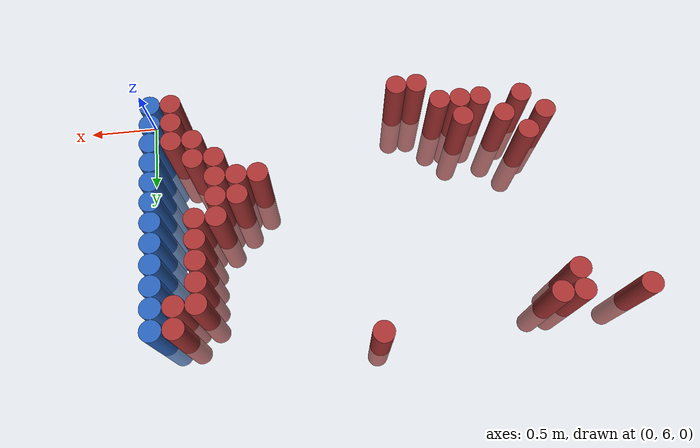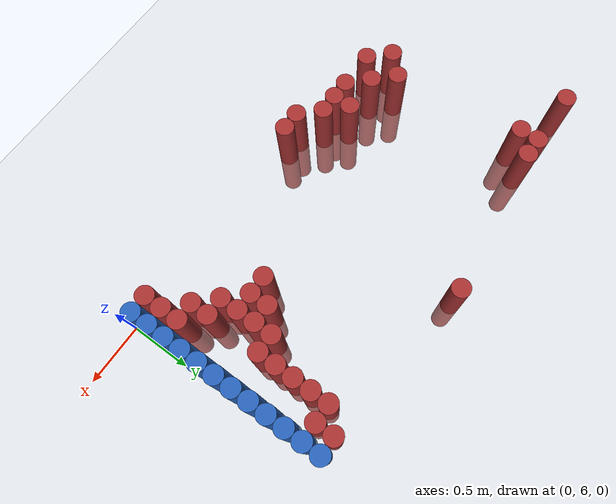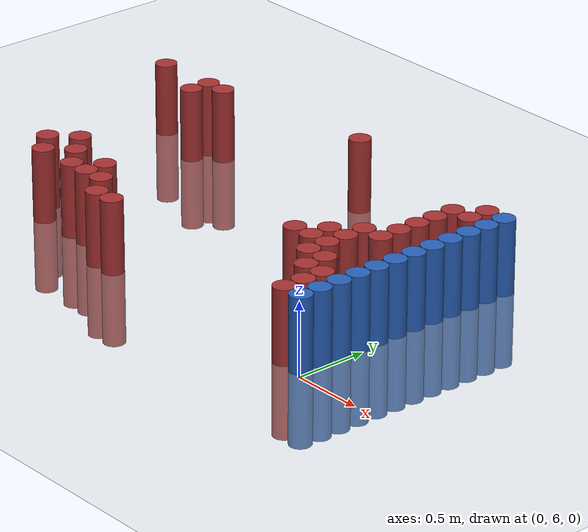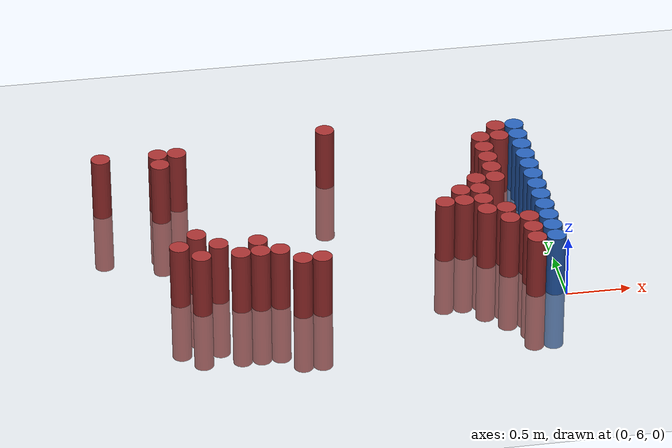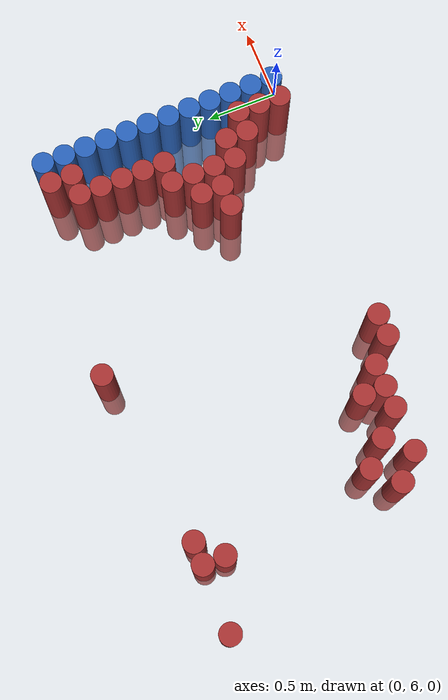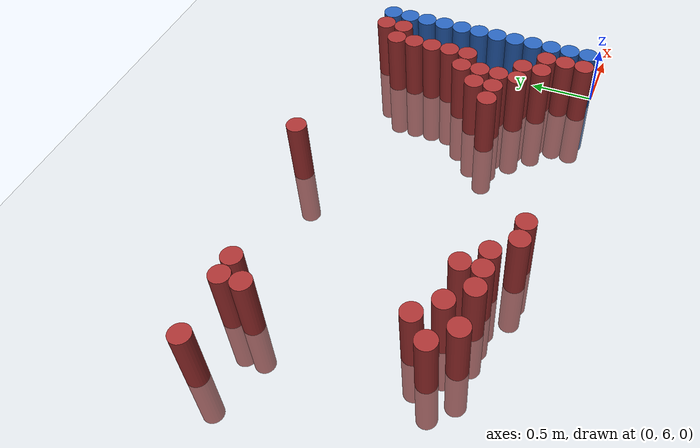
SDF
<sdf version="1.6">
 <world name="default">
  <model name="ground_plane">
   <static>1</static>
   <link name="link">
    <collision name="collision">
     <geometry><plane><normal>0 0 1</normal><size>100 100</size></plane></geometry>
     <surface><friction><ode><mu>100</mu><mu2>50</mu2></ode></friction></surface>
    </collision>
    <visual name="visual">
     <cast_shadows>0</cast_shadows>
     <geometry><plane><normal>0 0 1</normal><size>100 100</size></plane></geometry>
     <material>
      <script><uri>file://media/materials/scripts/gazebo.material</uri><name>Gazebo/Grey</name></script>
     </material>
    </visual>
   </link>
  </model>
  <model name="unit_cylinder_159">
   <static>1</static>
   <pose>-3.375000 7.725000 0.000000 0.000000 0.000000 0.000000</pose>
   <link name="link">
    <inertial>
     <mass>1</mass>
     <inertia><ixx>0.145833</ixx><ixy>0</ixy><ixz>0</ixz><iyy>0.145833</iyy><iyz>0</iyz><izz>0.125</izz></inertia>
    </inertial>
    <collision name="collision">
     <geometry><cylinder><radius>0.075000</radius><length>1</length></cylinder></geometry>
    </collision>
    <visual name="visual">
     <geometry><cylinder><radius>0.075000</radius><length>1</length></cylinder></geometry>
     <material>
      <ambient>0.648000 0.192000 0.192000 1</ambient>
      <diffuse>0.648000 0.192000 0.192000 1</diffuse>
     </material>
     <material>
      <script><name>Gazebo/Grey</name><uri>file://media/materials/scripts/gazebo.material</uri></script>
     </material>
    </visual>
   </link>
  </model>
  <model name="unit_cylinder_171">
   <static>1</static>
   <pose>-2.925000 6.375000 0.000000 0.000000 0.000000 0.000000</pose>
   <link name="link">
    <inertial>
     <mass>1</mass>
     <inertia><ixx>0.145833</ixx><ixy>0</ixy><ixz>0</ixz><iyy>0.145833</iyy><iyz>0</iyz><izz>0.125</izz></inertia>
    </inertial>
    <collision name="collision">
     <geometry><cylinder><radius>0.075000</radius><length>1</length></cylinder></geometry>
    </collision>
    <visual name="visual">
     <geometry><cylinder><radius>0.075000</radius><length>1</length></cylinder></geometry>
     <material>
      <ambient>0.648000 0.192000 0.192000 1</ambient>
      <diffuse>0.648000 0.192000 0.192000 1</diffuse>
     </material>
     <material>
      <script><name>Gazebo/Grey</name><uri>file://media/materials/scripts/gazebo.material</uri></script>
     </material>
    </visual>
   </link>
  </model>
  <model name="unit_cylinder_172">
   <static>1</static>
   <pose>-2.925000 7.575000 0.000000 0.000000 0.000000 0.000000</pose>
   <link name="link">
    <inertial>
     <mass>1</mass>
     <inertia><ixx>0.145833</ixx><ixy>0</ixy><ixz>0</ixz><iyy>0.145833</iyy><iyz>0</iyz><izz>0.125</izz></inertia>
    </inertial>
    <collision name="collision">
     <geometry><cylinder><radius>0.075000</radius><length>1</length></cylinder></geometry>
    </collision>
    <visual name="visual">
     <geometry><cylinder><radius>0.075000</radius><length>1</length></cylinder></geometry>
     <material>
      <ambient>0.648000 0.192000 0.192000 1</ambient>
      <diffuse>0.648000 0.192000 0.192000 1</diffuse>
     </material>
     <material>
      <script><name>Gazebo/Grey</name><uri>file://media/materials/scripts/gazebo.material</uri></script>
     </material>
    </visual>
   </link>
  </model>
  <model name="unit_cylinder_173">
   <static>1</static>
   <pose>-2.925000 7.725000 0.000000 0.000000 0.000000 0.000000</pose>
   <link name="link">
    <inertial>
     <mass>1</mass>
     <inertia><ixx>0.145833</ixx><ixy>0</ixy><ixz>0</ixz><iyy>0.145833</iyy><iyz>0</iyz><izz>0.125</izz></inertia>
    </inertial>
    <collision name="collision">
     <geometry><cylinder><radius>0.075000</radius><length>1</length></cylinder></geometry>
    </collision>
    <visual name="visual">
     <geometry><cylinder><radius>0.075000</radius><length>1</length></cylinder></geometry>
     <material>
      <ambient>0.648000 0.192000 0.192000 1</ambient>
      <diffuse>0.648000 0.192000 0.192000 1</diffuse>
     </material>
     <material>
      <script><name>Gazebo/Grey</name><uri>file://media/materials/scripts/gazebo.material</uri></script>
     </material>
    </visual>
   </link>
  </model>
  <model name="unit_cylinder_174">
   <static>1</static>
   <pose>-2.775000 6.225000 0.000000 0.000000 0.000000 0.000000</pose>
   <link name="link">
    <inertial>
     <mass>1</mass>
     <inertia><ixx>0.145833</ixx><ixy>0</ixy><ixz>0</ixz><iyy>0.145833</iyy><iyz>0</iyz><izz>0.125</izz></inertia>
    </inertial>
    <collision name="collision">
     <geometry><cylinder><radius>0.075000</radius><length>1</length></cylinder></geometry>
    </collision>
    <visual name="visual">
     <geometry><cylinder><radius>0.075000</radius><length>1</length></cylinder></geometry>
     <material>
      <ambient>0.648000 0.192000 0.192000 1</ambient>
      <diffuse>0.648000 0.192000 0.192000 1</diffuse>
     </material>
     <material>
      <script><name>Gazebo/Grey</name><uri>file://media/materials/scripts/gazebo.material</uri></script>
     </material>
    </visual>
   </link>
  </model>
  <model name="unit_cylinder_175">
   <static>1</static>
   <pose>-2.775000 6.525000 0.000000 0.000000 0.000000 0.000000</pose>
   <link name="link">
    <inertial>
     <mass>1</mass>
     <inertia><ixx>0.145833</ixx><ixy>0</ixy><ixz>0</ixz><iyy>0.145833</iyy><iyz>0</iyz><izz>0.125</izz></inertia>
    </inertial>
    <collision name="collision">
     <geometry><cylinder><radius>0.075000</radius><length>1</length></cylinder></geometry>
    </collision>
    <visual name="visual">
     <geometry><cylinder><radius>0.075000</radius><length>1</length></cylinder></geometry>
     <material>
      <ambient>0.648000 0.192000 0.192000 1</ambient>
      <diffuse>0.648000 0.192000 0.192000 1</diffuse>
     </material>
     <material>
      <script><name>Gazebo/Grey</name><uri>file://media/materials/scripts/gazebo.material</uri></script>
     </material>
    </visual>
   </link>
  </model>
  <model name="unit_cylinder_176">
   <static>1</static>
   <pose>-2.775000 7.725000 0.000000 0.000000 0.000000 0.000000</pose>
   <link name="link">
    <inertial>
     <mass>1</mass>
     <inertia><ixx>0.145833</ixx><ixy>0</ixy><ixz>0</ixz><iyy>0.145833</iyy><iyz>0</iyz><izz>0.125</izz></inertia>
    </inertial>
    <collision name="collision">
     <geometry><cylinder><radius>0.075000</radius><length>1</length></cylinder></geometry>
    </collision>
    <visual name="visual">
     <geometry><cylinder><radius>0.075000</radius><length>1</length></cylinder></geometry>
     <material>
      <ambient>0.648000 0.192000 0.192000 1</ambient>
      <diffuse>0.648000 0.192000 0.192000 1</diffuse>
     </material>
     <material>
      <script><name>Gazebo/Grey</name><uri>file://media/materials/scripts/gazebo.material</uri></script>
     </material>
    </visual>
   </link>
  </model>
  <model name="unit_cylinder_177">
   <static>1</static>
   <pose>-2.625000 6.375000 0.000000 0.000000 0.000000 0.000000</pose>
   <link name="link">
    <inertial>
     <mass>1</mass>
     <inertia><ixx>0.145833</ixx><ixy>0</ixy><ixz>0</ixz><iyy>0.145833</iyy><iyz>0</iyz><izz>0.125</izz></inertia>
    </inertial>
    <collision name="collision">
     <geometry><cylinder><radius>0.075000</radius><length>1</length></cylinder></geometry>
    </collision>
    <visual name="visual">
     <geometry><cylinder><radius>0.075000</radius><length>1</length></cylinder></geometry>
     <material>
      <ambient>0.648000 0.192000 0.192000 1</ambient>
      <diffuse>0.648000 0.192000 0.192000 1</diffuse>
     </material>
     <material>
      <script><name>Gazebo/Grey</name><uri>file://media/materials/scripts/gazebo.material</uri></script>
     </material>
    </visual>
   </link>
  </model>
  <model name="unit_cylinder_178">
   <static>1</static>
   <pose>-2.475000 6.225000 0.000000 0.000000 0.000000 0.000000</pose>
   <link name="link">
    <inertial>
     <mass>1</mass>
     <inertia><ixx>0.145833</ixx><ixy>0</ixy><ixz>0</ixz><iyy>0.145833</iyy><iyz>0</iyz><izz>0.125</izz></inertia>
    </inertial>
    <collision name="collision">
     <geometry><cylinder><radius>0.075000</radius><length>1</length></cylinder></geometry>
    </collision>
    <visual name="visual">
     <geometry><cylinder><radius>0.075000</radius><length>1</length></cylinder></geometry>
     <material>
      <ambient>0.648000 0.192000 0.192000 1</ambient>
      <diffuse>0.648000 0.192000 0.192000 1</diffuse>
     </material>
     <material>
      <script><name>Gazebo/Grey</name><uri>file://media/materials/scripts/gazebo.material</uri></script>
     </material>
    </visual>
   </link>
  </model>
  <model name="unit_cylinder_180">
   <static>1</static>
   <pose>-2.325000 6.225000 0.000000 0.000000 0.000000 0.000000</pose>
   <link name="link">
    <inertial>
     <mass>1</mass>
     <inertia><ixx>0.145833</ixx><ixy>0</ixy><ixz>0</ixz><iyy>0.145833</iyy><iyz>0</iyz><izz>0.125</izz></inertia>
    </inertial>
    <collision name="collision">
     <geometry><cylinder><radius>0.075000</radius><length>1</length></cylinder></geometry>
    </collision>
    <visual name="visual">
     <geometry><cylinder><radius>0.075000</radius><length>1</length></cylinder></geometry>
     <material>
      <ambient>0.648000 0.192000 0.192000 1</ambient>
      <diffuse>0.648000 0.192000 0.192000 1</diffuse>
     </material>
     <material>
      <script><name>Gazebo/Grey</name><uri>file://media/materials/scripts/gazebo.material</uri></script>
     </material>
    </visual>
   </link>
  </model>
  <model name="unit_cylinder_181">
   <static>1</static>
   <pose>-2.325000 6.375000 0.000000 0.000000 0.000000 0.000000</pose>
   <link name="link">
    <inertial>
     <mass>1</mass>
     <inertia><ixx>0.145833</ixx><ixy>0</ixy><ixz>0</ixz><iyy>0.145833</iyy><iyz>0</iyz><izz>0.125</izz></inertia>
    </inertial>
    <collision name="collision">
     <geometry><cylinder><radius>0.075000</radius><length>1</length></cylinder></geometry>
    </collision>
    <visual name="visual">
     <geometry><cylinder><radius>0.075000</radius><length>1</length></cylinder></geometry>
     <material>
      <ambient>0.648000 0.192000 0.192000 1</ambient>
      <diffuse>0.648000 0.192000 0.192000 1</diffuse>
     </material>
     <material>
      <script><name>Gazebo/Grey</name><uri>file://media/materials/scripts/gazebo.material</uri></script>
     </material>
    </visual>
   </link>
  </model>
  <model name="unit_cylinder_187">
   <static>1</static>
   <pose>-2.175000 6.225000 0.000000 0.000000 0.000000 0.000000</pose>
   <link name="link">
    <inertial>
     <mass>1</mass>
     <inertia><ixx>0.145833</ixx><ixy>0</ixy><ixz>0</ixz><iyy>0.145833</iyy><iyz>0</iyz><izz>0.125</izz></inertia>
    </inertial>
    <collision name="collision">
     <geometry><cylinder><radius>0.075000</radius><length>1</length></cylinder></geometry>
    </collision>
    <visual name="visual">
     <geometry><cylinder><radius>0.075000</radius><length>1</length></cylinder></geometry>
     <material>
      <ambient>0.648000 0.192000 0.192000 1</ambient>
      <diffuse>0.648000 0.192000 0.192000 1</diffuse>
     </material>
     <material>
      <script><name>Gazebo/Grey</name><uri>file://media/materials/scripts/gazebo.material</uri></script>
     </material>
    </visual>
   </link>
  </model>
  <model name="unit_cylinder_194">
   <static>1</static>
   <pose>-2.025000 6.075000 0.000000 0.000000 0.000000 0.000000</pose>
   <link name="link">
    <inertial>
     <mass>1</mass>
     <inertia><ixx>0.145833</ixx><ixy>0</ixy><ixz>0</ixz><iyy>0.145833</iyy><iyz>0</iyz><izz>0.125</izz></inertia>
    </inertial>
    <collision name="collision">
     <geometry><cylinder><radius>0.075000</radius><length>1</length></cylinder></geometry>
    </collision>
    <visual name="visual">
     <geometry><cylinder><radius>0.075000</radius><length>1</length></cylinder></geometry>
     <material>
      <ambient>0.648000 0.192000 0.192000 1</ambient>
      <diffuse>0.648000 0.192000 0.192000 1</diffuse>
     </material>
     <material>
      <script><name>Gazebo/Grey</name><uri>file://media/materials/scripts/gazebo.material</uri></script>
     </material>
    </visual>
   </link>
  </model>
  <model name="unit_cylinder_198">
   <static>1</static>
   <pose>-1.875000 6.075000 0.000000 0.000000 0.000000 0.000000</pose>
   <link name="link">
    <inertial>
     <mass>1</mass>
     <inertia><ixx>0.145833</ixx><ixy>0</ixy><ixz>0</ixz><iyy>0.145833</iyy><iyz>0</iyz><izz>0.125</izz></inertia>
    </inertial>
    <collision name="collision">
     <geometry><cylinder><radius>0.075000</radius><length>1</length></cylinder></geometry>
    </collision>
    <visual name="visual">
     <geometry><cylinder><radius>0.075000</radius><length>1</length></cylinder></geometry>
     <material>
      <ambient>0.648000 0.192000 0.192000 1</ambient>
      <diffuse>0.648000 0.192000 0.192000 1</diffuse>
     </material>
     <material>
      <script><name>Gazebo/Grey</name><uri>file://media/materials/scripts/gazebo.material</uri></script>
     </material>
    </visual>
   </link>
  </model>
  <model name="unit_cylinder_206">
   <static>1</static>
   <pose>-1.575000 7.875000 0.000000 0.000000 0.000000 0.000000</pose>
   <link name="link">
    <inertial>
     <mass>1</mass>
     <inertia><ixx>0.145833</ixx><ixy>0</ixy><ixz>0</ixz><iyy>0.145833</iyy><iyz>0</iyz><izz>0.125</izz></inertia>
    </inertial>
    <collision name="collision">
     <geometry><cylinder><radius>0.075000</radius><length>1</length></cylinder></geometry>
    </collision>
    <visual name="visual">
     <geometry><cylinder><radius>0.075000</radius><length>1</length></cylinder></geometry>
     <material>
      <ambient>0.648000 0.192000 0.192000 1</ambient>
      <diffuse>0.648000 0.192000 0.192000 1</diffuse>
     </material>
     <material>
      <script><name>Gazebo/Grey</name><uri>file://media/materials/scripts/gazebo.material</uri></script>
     </material>
    </visual>
   </link>
  </model>
  <model name="unit_cylinder_212">
   <static>1</static>
   <pose>-0.825000 6.675000 0.000000 0.000000 0.000000 0.000000</pose>
   <link name="link">
    <inertial>
     <mass>1</mass>
     <inertia><ixx>0.145833</ixx><ixy>0</ixy><ixz>0</ixz><iyy>0.145833</iyy><iyz>0</iyz><izz>0.125</izz></inertia>
    </inertial>
    <collision name="collision">
     <geometry><cylinder><radius>0.075000</radius><length>1</length></cylinder></geometry>
    </collision>
    <visual name="visual">
     <geometry><cylinder><radius>0.075000</radius><length>1</length></cylinder></geometry>
     <material>
      <ambient>0.648000 0.192000 0.192000 1</ambient>
      <diffuse>0.648000 0.192000 0.192000 1</diffuse>
     </material>
     <material>
      <script><name>Gazebo/Grey</name><uri>file://media/materials/scripts/gazebo.material</uri></script>
     </material>
    </visual>
   </link>
  </model>
  <model name="unit_cylinder_215">
   <static>1</static>
   <pose>-0.675000 6.675000 0.000000 0.000000 0.000000 0.000000</pose>
   <link name="link">
    <inertial>
     <mass>1</mass>
     <inertia><ixx>0.145833</ixx><ixy>0</ixy><ixz>0</ixz><iyy>0.145833</iyy><iyz>0</iyz><izz>0.125</izz></inertia>
    </inertial>
    <collision name="collision">
     <geometry><cylinder><radius>0.075000</radius><length>1</length></cylinder></geometry>
    </collision>
    <visual name="visual">
     <geometry><cylinder><radius>0.075000</radius><length>1</length></cylinder></geometry>
     <material>
      <ambient>0.648000 0.192000 0.192000 1</ambient>
      <diffuse>0.648000 0.192000 0.192000 1</diffuse>
     </material>
     <material>
      <script><name>Gazebo/Grey</name><uri>file://media/materials/scripts/gazebo.material</uri></script>
     </material>
    </visual>
   </link>
  </model>
  <model name="unit_cylinder_216">
   <static>1</static>
   <pose>-0.675000 6.825000 0.000000 0.000000 0.000000 0.000000</pose>
   <link name="link">
    <inertial>
     <mass>1</mass>
     <inertia><ixx>0.145833</ixx><ixy>0</ixy><ixz>0</ixz><iyy>0.145833</iyy><iyz>0</iyz><izz>0.125</izz></inertia>
    </inertial>
    <collision name="collision">
     <geometry><cylinder><radius>0.075000</radius><length>1</length></cylinder></geometry>
    </collision>
    <visual name="visual">
     <geometry><cylinder><radius>0.075000</radius><length>1</length></cylinder></geometry>
     <material>
      <ambient>0.648000 0.192000 0.192000 1</ambient>
      <diffuse>0.648000 0.192000 0.192000 1</diffuse>
     </material>
     <material>
      <script><name>Gazebo/Grey</name><uri>file://media/materials/scripts/gazebo.material</uri></script>
     </material>
    </visual>
   </link>
  </model>
  <model name="unit_cylinder_218">
   <static>1</static>
   <pose>-0.525000 6.525000 0.000000 0.000000 0.000000 0.000000</pose>
   <link name="link">
    <inertial>
     <mass>1</mass>
     <inertia><ixx>0.145833</ixx><ixy>0</ixy><ixz>0</ixz><iyy>0.145833</iyy><iyz>0</iyz><izz>0.125</izz></inertia>
    </inertial>
    <collision name="collision">
     <geometry><cylinder><radius>0.075000</radius><length>1</length></cylinder></geometry>
    </collision>
    <visual name="visual">
     <geometry><cylinder><radius>0.075000</radius><length>1</length></cylinder></geometry>
     <material>
      <ambient>0.648000 0.192000 0.192000 1</ambient>
      <diffuse>0.648000 0.192000 0.192000 1</diffuse>
     </material>
     <material>
      <script><name>Gazebo/Grey</name><uri>file://media/materials/scripts/gazebo.material</uri></script>
     </material>
    </visual>
   </link>
  </model>
  <model name="unit_cylinder_219">
   <static>1</static>
   <pose>-0.525000 6.675000 0.000000 0.000000 0.000000 0.000000</pose>
   <link name="link">
    <inertial>
     <mass>1</mass>
     <inertia><ixx>0.145833</ixx><ixy>0</ixy><ixz>0</ixz><iyy>0.145833</iyy><iyz>0</iyz><izz>0.125</izz></inertia>
    </inertial>
    <collision name="collision">
     <geometry><cylinder><radius>0.075000</radius><length>1</length></cylinder></geometry>
    </collision>
    <visual name="visual">
     <geometry><cylinder><radius>0.075000</radius><length>1</length></cylinder></geometry>
     <material>
      <ambient>0.648000 0.192000 0.192000 1</ambient>
      <diffuse>0.648000 0.192000 0.192000 1</diffuse>
     </material>
     <material>
      <script><name>Gazebo/Grey</name><uri>file://media/materials/scripts/gazebo.material</uri></script>
     </material>
    </visual>
   </link>
  </model>
  <model name="unit_cylinder_220">
   <static>1</static>
   <pose>-0.525000 6.825000 0.000000 0.000000 0.000000 0.000000</pose>
   <link name="link">
    <inertial>
     <mass>1</mass>
     <inertia><ixx>0.145833</ixx><ixy>0</ixy><ixz>0</ixz><iyy>0.145833</iyy><iyz>0</iyz><izz>0.125</izz></inertia>
    </inertial>
    <collision name="collision">
     <geometry><cylinder><radius>0.075000</radius><length>1</length></cylinder></geometry>
    </collision>
    <visual name="visual">
     <geometry><cylinder><radius>0.075000</radius><length>1</length></cylinder></geometry>
     <material>
      <ambient>0.648000 0.192000 0.192000 1</ambient>
      <diffuse>0.648000 0.192000 0.192000 1</diffuse>
     </material>
     <material>
      <script><name>Gazebo/Grey</name><uri>file://media/materials/scripts/gazebo.material</uri></script>
     </material>
    </visual>
   </link>
  </model>
  <model name="unit_cylinder_221">
   <static>1</static>
   <pose>-0.525000 6.975000 0.000000 0.000000 0.000000 0.000000</pose>
   <link name="link">
    <inertial>
     <mass>1</mass>
     <inertia><ixx>0.145833</ixx><ixy>0</ixy><ixz>0</ixz><iyy>0.145833</iyy><iyz>0</iyz><izz>0.125</izz></inertia>
    </inertial>
    <collision name="collision">
     <geometry><cylinder><radius>0.075000</radius><length>1</length></cylinder></geometry>
    </collision>
    <visual name="visual">
     <geometry><cylinder><radius>0.075000</radius><length>1</length></cylinder></geometry>
     <material>
      <ambient>0.648000 0.192000 0.192000 1</ambient>
      <diffuse>0.648000 0.192000 0.192000 1</diffuse>
     </material>
     <material>
      <script><name>Gazebo/Grey</name><uri>file://media/materials/scripts/gazebo.material</uri></script>
     </material>
    </visual>
   </link>
  </model>
  <model name="unit_cylinder_223">
   <static>1</static>
   <pose>-0.375000 6.375000 0.000000 0.000000 0.000000 0.000000</pose>
   <link name="link">
    <inertial>
     <mass>1</mass>
     <inertia><ixx>0.145833</ixx><ixy>0</ixy><ixz>0</ixz><iyy>0.145833</iyy><iyz>0</iyz><izz>0.125</izz></inertia>
    </inertial>
    <collision name="collision">
     <geometry><cylinder><radius>0.075000</radius><length>1</length></cylinder></geometry>
    </collision>
    <visual name="visual">
     <geometry><cylinder><radius>0.075000</radius><length>1</length></cylinder></geometry>
     <material>
      <ambient>0.648000 0.192000 0.192000 1</ambient>
      <diffuse>0.648000 0.192000 0.192000 1</diffuse>
     </material>
     <material>
      <script><name>Gazebo/Grey</name><uri>file://media/materials/scripts/gazebo.material</uri></script>
     </material>
    </visual>
   </link>
  </model>
  <model name="unit_cylinder_224">
   <static>1</static>
   <pose>-0.375000 6.525000 0.000000 0.000000 0.000000 0.000000</pose>
   <link name="link">
    <inertial>
     <mass>1</mass>
     <inertia><ixx>0.145833</ixx><ixy>0</ixy><ixz>0</ixz><iyy>0.145833</iyy><iyz>0</iyz><izz>0.125</izz></inertia>
    </inertial>
    <collision name="collision">
     <geometry><cylinder><radius>0.075000</radius><length>1</length></cylinder></geometry>
    </collision>
    <visual name="visual">
     <geometry><cylinder><radius>0.075000</radius><length>1</length></cylinder></geometry>
     <material>
      <ambient>0.648000 0.192000 0.192000 1</ambient>
      <diffuse>0.648000 0.192000 0.192000 1</diffuse>
     </material>
     <material>
      <script><name>Gazebo/Grey</name><uri>file://media/materials/scripts/gazebo.material</uri></script>
     </material>
    </visual>
   </link>
  </model>
  <model name="unit_cylinder_225">
   <static>1</static>
   <pose>-0.375000 6.975000 0.000000 0.000000 0.000000 0.000000</pose>
   <link name="link">
    <inertial>
     <mass>1</mass>
     <inertia><ixx>0.145833</ixx><ixy>0</ixy><ixz>0</ixz><iyy>0.145833</iyy><iyz>0</iyz><izz>0.125</izz></inertia>
    </inertial>
    <collision name="collision">
     <geometry><cylinder><radius>0.075000</radius><length>1</length></cylinder></geometry>
    </collision>
    <visual name="visual">
     <geometry><cylinder><radius>0.075000</radius><length>1</length></cylinder></geometry>
     <material>
      <ambient>0.648000 0.192000 0.192000 1</ambient>
      <diffuse>0.648000 0.192000 0.192000 1</diffuse>
     </material>
     <material>
      <script><name>Gazebo/Grey</name><uri>file://media/materials/scripts/gazebo.material</uri></script>
     </material>
    </visual>
   </link>
  </model>
  <model name="unit_cylinder_226">
   <static>1</static>
   <pose>-0.375000 7.125000 0.000000 0.000000 0.000000 0.000000</pose>
   <link name="link">
    <inertial>
     <mass>1</mass>
     <inertia><ixx>0.145833</ixx><ixy>0</ixy><ixz>0</ixz><iyy>0.145833</iyy><iyz>0</iyz><izz>0.125</izz></inertia>
    </inertial>
    <collision name="collision">
     <geometry><cylinder><radius>0.075000</radius><length>1</length></cylinder></geometry>
    </collision>
    <visual name="visual">
     <geometry><cylinder><radius>0.075000</radius><length>1</length></cylinder></geometry>
     <material>
      <ambient>0.648000 0.192000 0.192000 1</ambient>
      <diffuse>0.648000 0.192000 0.192000 1</diffuse>
     </material>
     <material>
      <script><name>Gazebo/Grey</name><uri>file://media/materials/scripts/gazebo.material</uri></script>
     </material>
    </visual>
   </link>
  </model>
  <model name="unit_cylinder_227">
   <static>1</static>
   <pose>-0.375000 7.275000 0.000000 0.000000 0.000000 0.000000</pose>
   <link name="link">
    <inertial>
     <mass>1</mass>
     <inertia><ixx>0.145833</ixx><ixy>0</ixy><ixz>0</ixz><iyy>0.145833</iyy><iyz>0</iyz><izz>0.125</izz></inertia>
    </inertial>
    <collision name="collision">
     <geometry><cylinder><radius>0.075000</radius><length>1</length></cylinder></geometry>
    </collision>
    <visual name="visual">
     <geometry><cylinder><radius>0.075000</radius><length>1</length></cylinder></geometry>
     <material>
      <ambient>0.648000 0.192000 0.192000 1</ambient>
      <diffuse>0.648000 0.192000 0.192000 1</diffuse>
     </material>
     <material>
      <script><name>Gazebo/Grey</name><uri>file://media/materials/scripts/gazebo.material</uri></script>
     </material>
    </visual>
   </link>
  </model>
  <model name="unit_cylinder_228">
   <static>1</static>
   <pose>-0.375000 7.425000 0.000000 0.000000 0.000000 0.000000</pose>
   <link name="link">
    <inertial>
     <mass>1</mass>
     <inertia><ixx>0.145833</ixx><ixy>0</ixy><ixz>0</ixz><iyy>0.145833</iyy><iyz>0</iyz><izz>0.125</izz></inertia>
    </inertial>
    <collision name="collision">
     <geometry><cylinder><radius>0.075000</radius><length>1</length></cylinder></geometry>
    </collision>
    <visual name="visual">
     <geometry><cylinder><radius>0.075000</radius><length>1</length></cylinder></geometry>
     <material>
      <ambient>0.648000 0.192000 0.192000 1</ambient>
      <diffuse>0.648000 0.192000 0.192000 1</diffuse>
     </material>
     <material>
      <script><name>Gazebo/Grey</name><uri>file://media/materials/scripts/gazebo.material</uri></script>
     </material>
    </visual>
   </link>
  </model>
  <model name="unit_cylinder_229">
   <static>1</static>
   <pose>-0.375000 7.575000 0.000000 0.000000 0.000000 0.000000</pose>
   <link name="link">
    <inertial>
     <mass>1</mass>
     <inertia><ixx>0.145833</ixx><ixy>0</ixy><ixz>0</ixz><iyy>0.145833</iyy><iyz>0</iyz><izz>0.125</izz></inertia>
    </inertial>
    <collision name="collision">
     <geometry><cylinder><radius>0.075000</radius><length>1</length></cylinder></geometry>
    </collision>
    <visual name="visual">
     <geometry><cylinder><radius>0.075000</radius><length>1</length></cylinder></geometry>
     <material>
      <ambient>0.648000 0.192000 0.192000 1</ambient>
      <diffuse>0.648000 0.192000 0.192000 1</diffuse>
     </material>
     <material>
      <script><name>Gazebo/Grey</name><uri>file://media/materials/scripts/gazebo.material</uri></script>
     </material>
    </visual>
   </link>
  </model>
  <model name="unit_cylinder_233">
   <static>1</static>
   <pose>-0.225000 6.075000 0.000000 0.000000 0.000000 0.000000</pose>
   <link name="link">
    <inertial>
     <mass>1</mass>
     <inertia><ixx>0.145833</ixx><ixy>0</ixy><ixz>0</ixz><iyy>0.145833</iyy><iyz>0</iyz><izz>0.125</izz></inertia>
    </inertial>
    <collision name="collision">
     <geometry><cylinder><radius>0.075000</radius><length>1</length></cylinder></geometry>
    </collision>
    <visual name="visual">
     <geometry><cylinder><radius>0.075000</radius><length>1</length></cylinder></geometry>
     <material>
      <ambient>0.648000 0.192000 0.192000 1</ambient>
      <diffuse>0.648000 0.192000 0.192000 1</diffuse>
     </material>
     <material>
      <script><name>Gazebo/Grey</name><uri>file://media/materials/scripts/gazebo.material</uri></script>
     </material>
    </visual>
   </link>
  </model>
  <model name="unit_cylinder_234">
   <static>1</static>
   <pose>-0.225000 6.225000 0.000000 0.000000 0.000000 0.000000</pose>
   <link name="link">
    <inertial>
     <mass>1</mass>
     <inertia><ixx>0.145833</ixx><ixy>0</ixy><ixz>0</ixz><iyy>0.145833</iyy><iyz>0</iyz><izz>0.125</izz></inertia>
    </inertial>
    <collision name="collision">
     <geometry><cylinder><radius>0.075000</radius><length>1</length></cylinder></geometry>
    </collision>
    <visual name="visual">
     <geometry><cylinder><radius>0.075000</radius><length>1</length></cylinder></geometry>
     <material>
      <ambient>0.648000 0.192000 0.192000 1</ambient>
      <diffuse>0.648000 0.192000 0.192000 1</diffuse>
     </material>
     <material>
      <script><name>Gazebo/Grey</name><uri>file://media/materials/scripts/gazebo.material</uri></script>
     </material>
    </visual>
   </link>
  </model>
  <model name="unit_cylinder_235">
   <static>1</static>
   <pose>-0.225000 6.375000 0.000000 0.000000 0.000000 0.000000</pose>
   <link name="link">
    <inertial>
     <mass>1</mass>
     <inertia><ixx>0.145833</ixx><ixy>0</ixy><ixz>0</ixz><iyy>0.145833</iyy><iyz>0</iyz><izz>0.125</izz></inertia>
    </inertial>
    <collision name="collision">
     <geometry><cylinder><radius>0.075000</radius><length>1</length></cylinder></geometry>
    </collision>
    <visual name="visual">
     <geometry><cylinder><radius>0.075000</radius><length>1</length></cylinder></geometry>
     <material>
      <ambient>0.648000 0.192000 0.192000 1</ambient>
      <diffuse>0.648000 0.192000 0.192000 1</diffuse>
     </material>
     <material>
      <script><name>Gazebo/Grey</name><uri>file://media/materials/scripts/gazebo.material</uri></script>
     </material>
    </visual>
   </link>
  </model>
  <model name="unit_cylinder_236">
   <static>1</static>
   <pose>-0.225000 7.575000 0.000000 0.000000 0.000000 0.000000</pose>
   <link name="link">
    <inertial>
     <mass>1</mass>
     <inertia><ixx>0.145833</ixx><ixy>0</ixy><ixz>0</ixz><iyy>0.145833</iyy><iyz>0</iyz><izz>0.125</izz></inertia>
    </inertial>
    <collision name="collision">
     <geometry><cylinder><radius>0.075000</radius><length>1</length></cylinder></geometry>
    </collision>
    <visual name="visual">
     <geometry><cylinder><radius>0.075000</radius><length>1</length></cylinder></geometry>
     <material>
      <ambient>0.648000 0.192000 0.192000 1</ambient>
      <diffuse>0.648000 0.192000 0.192000 1</diffuse>
     </material>
     <material>
      <script><name>Gazebo/Grey</name><uri>file://media/materials/scripts/gazebo.material</uri></script>
     </material>
    </visual>
   </link>
  </model>
  <model name="unit_cylinder_237">
   <static>1</static>
   <pose>-0.225000 7.725000 0.000000 0.000000 0.000000 0.000000</pose>
   <link name="link">
    <inertial>
     <mass>1</mass>
     <inertia><ixx>0.145833</ixx><ixy>0</ixy><ixz>0</ixz><iyy>0.145833</iyy><iyz>0</iyz><izz>0.125</izz></inertia>
    </inertial>
    <collision name="collision">
     <geometry><cylinder><radius>0.075000</radius><length>1</length></cylinder></geometry>
    </collision>
    <visual name="visual">
     <geometry><cylinder><radius>0.075000</radius><length>1</length></cylinder></geometry>
     <material>
      <ambient>0.648000 0.192000 0.192000 1</ambient>
      <diffuse>0.648000 0.192000 0.192000 1</diffuse>
     </material>
     <material>
      <script><name>Gazebo/Grey</name><uri>file://media/materials/scripts/gazebo.material</uri></script>
     </material>
    </visual>
   </link>
  </model>
  <model name="unit_cylinder_253">
   <static>1</static>
   <pose>-0.075000 6.075000 0.000000 0.000000 0.000000 0.000000</pose>
   <link name="link">
    <inertial>
     <mass>1</mass>
     <inertia><ixx>0.145833</ixx><ixy>0</ixy><ixz>0</ixz><iyy>0.145833</iyy><iyz>0</iyz><izz>0.125</izz></inertia>
    </inertial>
    <collision name="collision">
     <geometry><cylinder><radius>0.075000</radius><length>1</length></cylinder></geometry>
    </collision>
    <visual name="visual">
     <geometry><cylinder><radius>0.075000</radius><length>1</length></cylinder></geometry>
     <material>
      <ambient>0.152000 0.379000 0.720000 1</ambient>
      <diffuse>0.152000 0.379000 0.720000 1</diffuse>
     </material>
     <material>
      <script><name>Gazebo/Grey</name><uri>file://media/materials/scripts/gazebo.material</uri></script>
     </material>
    </visual>
   </link>
  </model>
  <model name="unit_cylinder_254">
   <static>1</static>
   <pose>-0.075000 6.225000 0.000000 0.000000 0.000000 0.000000</pose>
   <link name="link">
    <inertial>
     <mass>1</mass>
     <inertia><ixx>0.145833</ixx><ixy>0</ixy><ixz>0</ixz><iyy>0.145833</iyy><iyz>0</iyz><izz>0.125</izz></inertia>
    </inertial>
    <collision name="collision">
     <geometry><cylinder><radius>0.075000</radius><length>1</length></cylinder></geometry>
    </collision>
    <visual name="visual">
     <geometry><cylinder><radius>0.075000</radius><length>1</length></cylinder></geometry>
     <material>
      <ambient>0.152000 0.379000 0.720000 1</ambient>
      <diffuse>0.152000 0.379000 0.720000 1</diffuse>
     </material>
     <material>
      <script><name>Gazebo/Grey</name><uri>file://media/materials/scripts/gazebo.material</uri></script>
     </material>
    </visual>
   </link>
  </model>
  <model name="unit_cylinder_255">
   <static>1</static>
   <pose>-0.075000 6.375000 0.000000 0.000000 0.000000 0.000000</pose>
   <link name="link">
    <inertial>
     <mass>1</mass>
     <inertia><ixx>0.145833</ixx><ixy>0</ixy><ixz>0</ixz><iyy>0.145833</iyy><iyz>0</iyz><izz>0.125</izz></inertia>
    </inertial>
    <collision name="collision">
     <geometry><cylinder><radius>0.075000</radius><length>1</length></cylinder></geometry>
    </collision>
    <visual name="visual">
     <geometry><cylinder><radius>0.075000</radius><length>1</length></cylinder></geometry>
     <material>
      <ambient>0.152000 0.379000 0.720000 1</ambient>
      <diffuse>0.152000 0.379000 0.720000 1</diffuse>
     </material>
     <material>
      <script><name>Gazebo/Grey</name><uri>file://media/materials/scripts/gazebo.material</uri></script>
     </material>
    </visual>
   </link>
  </model>
  <model name="unit_cylinder_256">
   <static>1</static>
   <pose>-0.075000 6.525000 0.000000 0.000000 0.000000 0.000000</pose>
   <link name="link">
    <inertial>
     <mass>1</mass>
     <inertia><ixx>0.145833</ixx><ixy>0</ixy><ixz>0</ixz><iyy>0.145833</iyy><iyz>0</iyz><izz>0.125</izz></inertia>
    </inertial>
    <collision name="collision">
     <geometry><cylinder><radius>0.075000</radius><length>1</length></cylinder></geometry>
    </collision>
    <visual name="visual">
     <geometry><cylinder><radius>0.075000</radius><length>1</length></cylinder></geometry>
     <material>
      <ambient>0.152000 0.379000 0.720000 1</ambient>
      <diffuse>0.152000 0.379000 0.720000 1</diffuse>
     </material>
     <material>
      <script><name>Gazebo/Grey</name><uri>file://media/materials/scripts/gazebo.material</uri></script>
     </material>
    </visual>
   </link>
  </model>
  <model name="unit_cylinder_257">
   <static>1</static>
   <pose>-0.075000 6.675000 0.000000 0.000000 0.000000 0.000000</pose>
   <link name="link">
    <inertial>
     <mass>1</mass>
     <inertia><ixx>0.145833</ixx><ixy>0</ixy><ixz>0</ixz><iyy>0.145833</iyy><iyz>0</iyz><izz>0.125</izz></inertia>
    </inertial>
    <collision name="collision">
     <geometry><cylinder><radius>0.075000</radius><length>1</length></cylinder></geometry>
    </collision>
    <visual name="visual">
     <geometry><cylinder><radius>0.075000</radius><length>1</length></cylinder></geometry>
     <material>
      <ambient>0.152000 0.379000 0.720000 1</ambient>
      <diffuse>0.152000 0.379000 0.720000 1</diffuse>
     </material>
     <material>
      <script><name>Gazebo/Grey</name><uri>file://media/materials/scripts/gazebo.material</uri></script>
     </material>
    </visual>
   </link>
  </model>
  <model name="unit_cylinder_258">
   <static>1</static>
   <pose>-0.075000 6.825000 0.000000 0.000000 0.000000 0.000000</pose>
   <link name="link">
    <inertial>
     <mass>1</mass>
     <inertia><ixx>0.145833</ixx><ixy>0</ixy><ixz>0</ixz><iyy>0.145833</iyy><iyz>0</iyz><izz>0.125</izz></inertia>
    </inertial>
    <collision name="collision">
     <geometry><cylinder><radius>0.075000</radius><length>1</length></cylinder></geometry>
    </collision>
    <visual name="visual">
     <geometry><cylinder><radius>0.075000</radius><length>1</length></cylinder></geometry>
     <material>
      <ambient>0.152000 0.379000 0.720000 1</ambient>
      <diffuse>0.152000 0.379000 0.720000 1</diffuse>
     </material>
     <material>
      <script><name>Gazebo/Grey</name><uri>file://media/materials/scripts/gazebo.material</uri></script>
     </material>
    </visual>
   </link>
  </model>
  <model name="unit_cylinder_259">
   <static>1</static>
   <pose>-0.075000 6.975000 0.000000 0.000000 0.000000 0.000000</pose>
   <link name="link">
    <inertial>
     <mass>1</mass>
     <inertia><ixx>0.145833</ixx><ixy>0</ixy><ixz>0</ixz><iyy>0.145833</iyy><iyz>0</iyz><izz>0.125</izz></inertia>
    </inertial>
    <collision name="collision">
     <geometry><cylinder><radius>0.075000</radius><length>1</length></cylinder></geometry>
    </collision>
    <visual name="visual">
     <geometry><cylinder><radius>0.075000</radius><length>1</length></cylinder></geometry>
     <material>
      <ambient>0.152000 0.379000 0.720000 1</ambient>
      <diffuse>0.152000 0.379000 0.720000 1</diffuse>
     </material>
     <material>
      <script><name>Gazebo/Grey</name><uri>file://media/materials/scripts/gazebo.material</uri></script>
     </material>
    </visual>
   </link>
  </model>
  <model name="unit_cylinder_260">
   <static>1</static>
   <pose>-0.075000 7.125000 0.000000 0.000000 0.000000 0.000000</pose>
   <link name="link">
    <inertial>
     <mass>1</mass>
     <inertia><ixx>0.145833</ixx><ixy>0</ixy><ixz>0</ixz><iyy>0.145833</iyy><iyz>0</iyz><izz>0.125</izz></inertia>
    </inertial>
    <collision name="collision">
     <geometry><cylinder><radius>0.075000</radius><length>1</length></cylinder></geometry>
    </collision>
    <visual name="visual">
     <geometry><cylinder><radius>0.075000</radius><length>1</length></cylinder></geometry>
     <material>
      <ambient>0.152000 0.379000 0.720000 1</ambient>
      <diffuse>0.152000 0.379000 0.720000 1</diffuse>
     </material>
     <material>
      <script><name>Gazebo/Grey</name><uri>file://media/materials/scripts/gazebo.material</uri></script>
     </material>
    </visual>
   </link>
  </model>
  <model name="unit_cylinder_261">
   <static>1</static>
   <pose>-0.075000 7.275000 0.000000 0.000000 0.000000 0.000000</pose>
   <link name="link">
    <inertial>
     <mass>1</mass>
     <inertia><ixx>0.145833</ixx><ixy>0</ixy><ixz>0</ixz><iyy>0.145833</iyy><iyz>0</iyz><izz>0.125</izz></inertia>
    </inertial>
    <collision name="collision">
     <geometry><cylinder><radius>0.075000</radius><length>1</length></cylinder></geometry>
    </collision>
    <visual name="visual">
     <geometry><cylinder><radius>0.075000</radius><length>1</length></cylinder></geometry>
     <material>
      <ambient>0.152000 0.379000 0.720000 1</ambient>
      <diffuse>0.152000 0.379000 0.720000 1</diffuse>
     </material>
     <material>
      <script><name>Gazebo/Grey</name><uri>file://media/materials/scripts/gazebo.material</uri></script>
     </material>
    </visual>
   </link>
  </model>
  <model name="unit_cylinder_262">
   <static>1</static>
   <pose>-0.075000 7.425000 0.000000 0.000000 0.000000 0.000000</pose>
   <link name="link">
    <inertial>
     <mass>1</mass>
     <inertia><ixx>0.145833</ixx><ixy>0</ixy><ixz>0</ixz><iyy>0.145833</iyy><iyz>0</iyz><izz>0.125</izz></inertia>
    </inertial>
    <collision name="collision">
     <geometry><cylinder><radius>0.075000</radius><length>1</length></cylinder></geometry>
    </collision>
    <visual name="visual">
     <geometry><cylinder><radius>0.075000</radius><length>1</length></cylinder></geometry>
     <material>
      <ambient>0.152000 0.379000 0.720000 1</ambient>
      <diffuse>0.152000 0.379000 0.720000 1</diffuse>
     </material>
     <material>
      <script><name>Gazebo/Grey</name><uri>file://media/materials/scripts/gazebo.material</uri></script>
     </material>
    </visual>
   </link>
  </model>
  <model name="unit_cylinder_263">
   <static>1</static>
   <pose>-0.075000 7.575000 0.000000 0.000000 0.000000 0.000000</pose>
   <link name="link">
    <inertial>
     <mass>1</mass>
     <inertia><ixx>0.145833</ixx><ixy>0</ixy><ixz>0</ixz><iyy>0.145833</iyy><iyz>0</iyz><izz>0.125</izz></inertia>
    </inertial>
    <collision name="collision">
     <geometry><cylinder><radius>0.075000</radius><length>1</length></cylinder></geometry>
    </collision>
    <visual name="visual">
     <geometry><cylinder><radius>0.075000</radius><length>1</length></cylinder></geometry>
     <material>
      <ambient>0.152000 0.379000 0.720000 1</ambient>
      <diffuse>0.152000 0.379000 0.720000 1</diffuse>
     </material>
     <material>
      <script><name>Gazebo/Grey</name><uri>file://media/materials/scripts/gazebo.material</uri></script>
     </material>
    </visual>
   </link>
  </model>
  <model name="unit_cylinder_264">
   <static>1</static>
   <pose>-0.075000 7.725000 0.000000 0.000000 0.000000 0.000000</pose>
   <link name="link">
    <inertial>
     <mass>1</mass>
     <inertia><ixx>0.145833</ixx><ixy>0</ixy><ixz>0</ixz><iyy>0.145833</iyy><iyz>0</iyz><izz>0.125</izz></inertia>
    </inertial>
    <collision name="collision">
     <geometry><cylinder><radius>0.075000</radius><length>1</length></cylinder></geometry>
    </collision>
    <visual name="visual">
     <geometry><cylinder><radius>0.075000</radius><length>1</length></cylinder></geometry>
     <material>
      <ambient>0.152000 0.379000 0.720000 1</ambient>
      <diffuse>0.152000 0.379000 0.720000 1</diffuse>
     </material>
     <material>
      <script><name>Gazebo/Grey</name><uri>file://media/materials/scripts/gazebo.material</uri></script>
     </material>
    </visual>
   </link>
  </model>
 </world>
</sdf>
